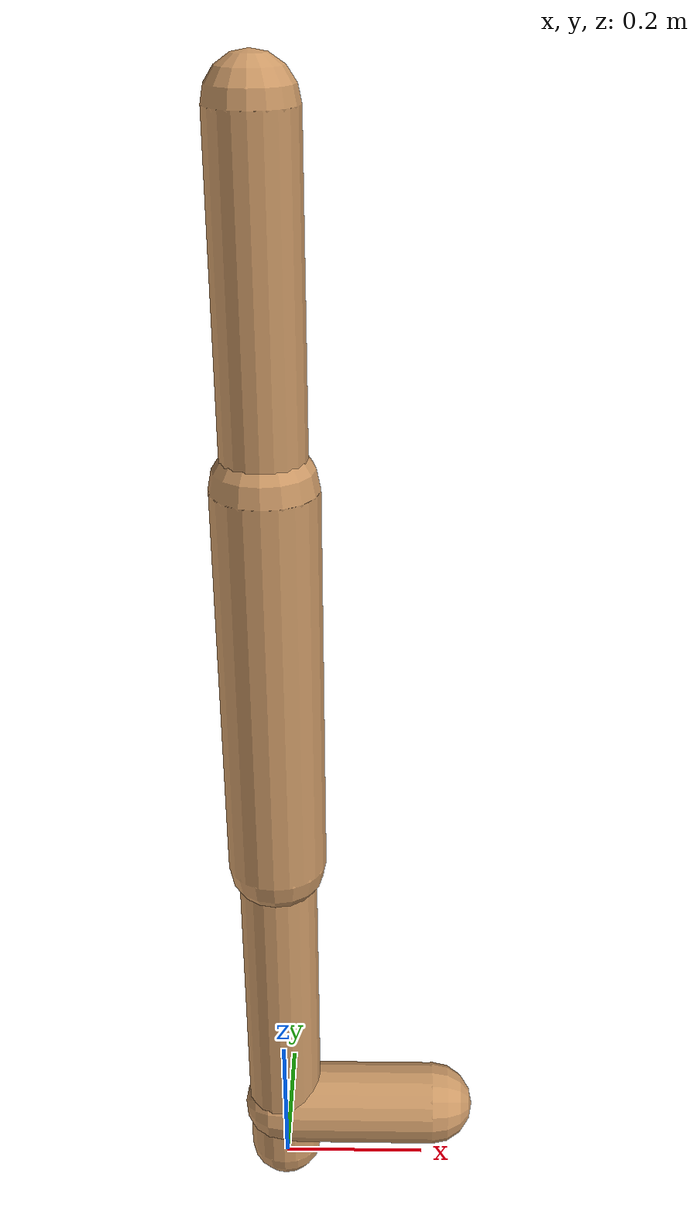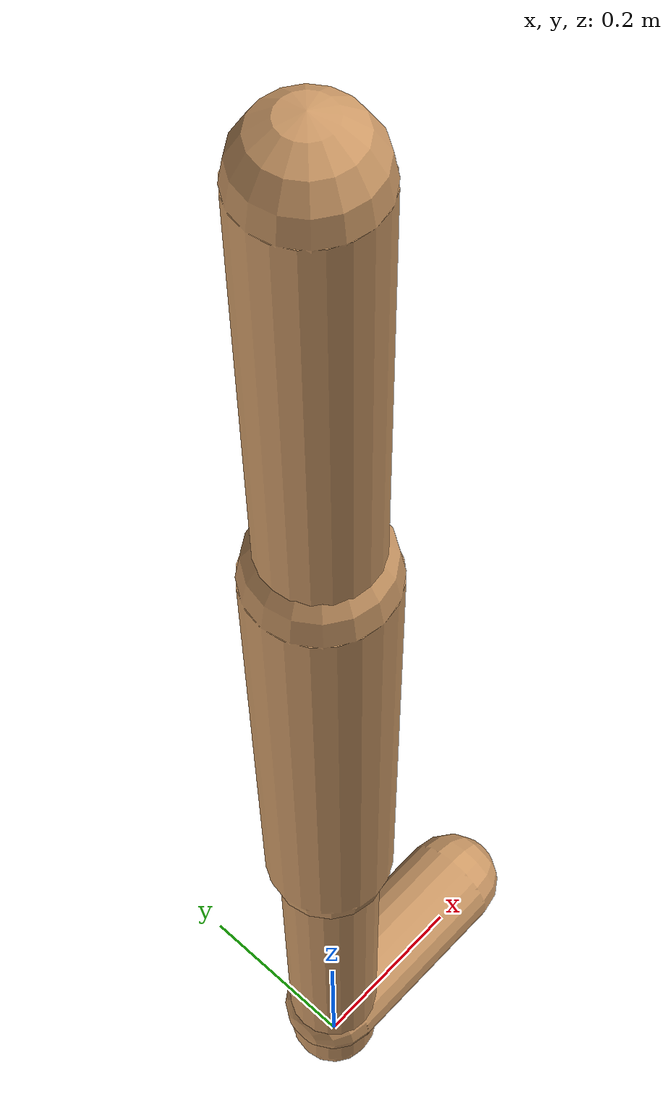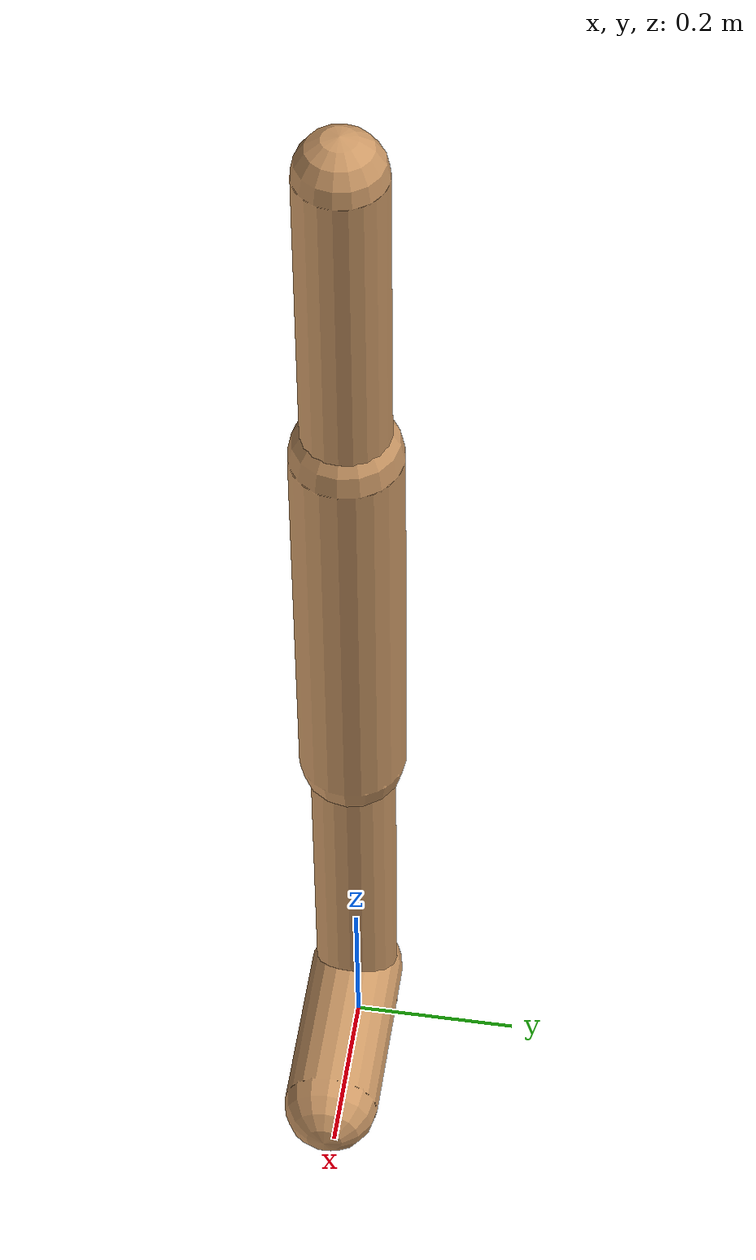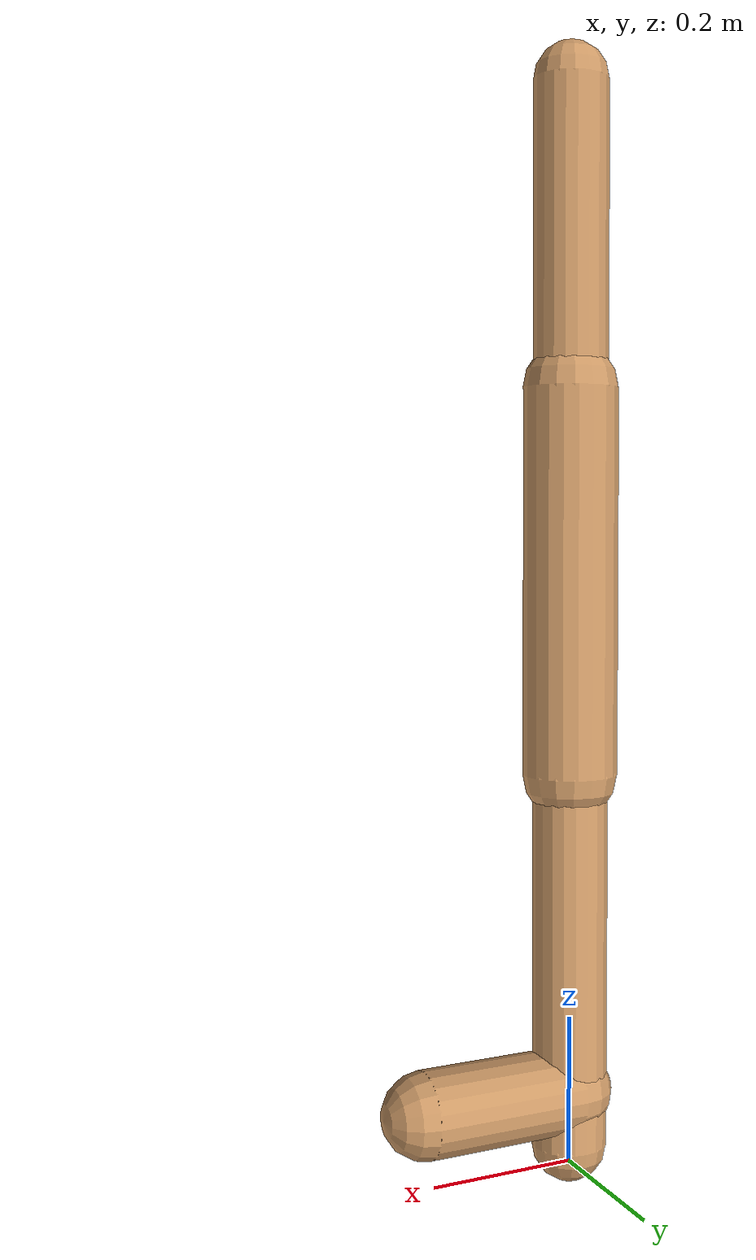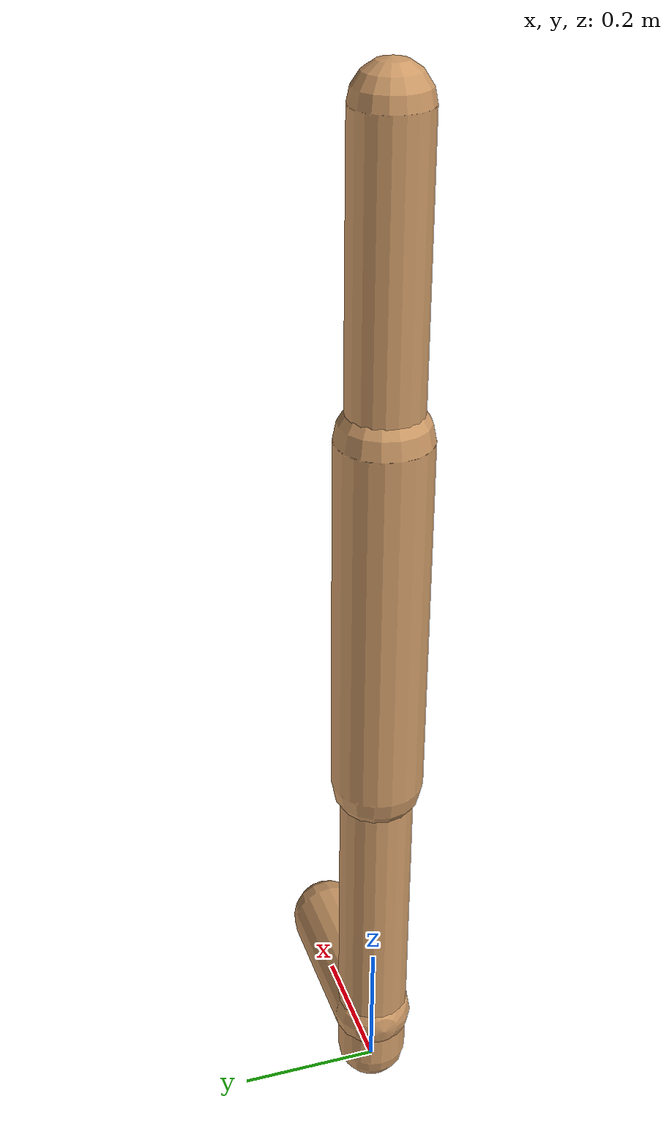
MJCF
<mujoco model="walker2d">
  <compiler angle="degree" coordinate="global" inertiafromgeom="true" />
  <default>
    <joint armature="0.01" damping=".1" limited="true" />
    <geom conaffinity="0" condim="3" contype="1" density="1000" friction="0.8 .1 .1" rgba="0.8 0.6 .4 1" />
  </default>
  <option integrator="RK4" timestep="0.002" />
  <worldbody>

    <body name="torso" pos="0 0 0.13949707192111077">
      <joint armature="0" axis="1 0 0" damping="0" limited="false" name="ignorex" pos="0 0 0" stiffness="0" type="slide" />
      <joint armature="0" axis="0 0 1" damping="0" limited="false" name="ignorez" pos="0 0 0" ref="1.25" stiffness="0" type="slide" />
      <joint armature="0" axis="0 1 0" damping="0" limited="false" name="ignorey" pos="0 0 0" stiffness="0" type="hinge" />
      <geom fromto="0 0 1.45 0 0 1.05" name="torso_geom" size="0.05025187811954454" type="capsule" />
      <body name="thigh">
        <joint axis="0 -1 0" name="thigh_joint" pos="0 0 1.05" range="-150 0" type="hinge" />
        <geom fromto="0.0 0.0 1.05 0.0 0.0 0.5339224396163159" name="thigh_geom" size="0.06374938600650841" type="capsule" />
        <body name="leg" pos="0.0 0.0 -0.06607756038368406">
          <joint axis="0 -1 0" name="leg_joint" pos="0 0 0.6" range="-150 0" type="hinge" />
          <geom fromto="0.0 0.0 0.6 0.0 0.0 0.026580488462573285" name="leg_geom" size="0.050999508805206734" type="capsule" />
          <body name="foot" pos="0.0 0.0 -0.07341951153742672">
            <joint axis="0 -1 0" name="foot_joint" pos="0 0 0.1" range="-45 45" type="hinge" />
            <geom fromto="-0.0 0.0 0.1 0.21318888728207092 0.0 0.1" name="foot_geom" size="0.05775833782731203" type="capsule" />
          </body>
        </body>
      </body>

      <body name="thigh_left">
        <joint axis="0 -1 0" name="thigh_left_joint" pos="0 0 1.05" range="-150 0" type="hinge" />
        <geom fromto="0.0 0.0 1.05 0.0 0.0 0.5339224396163159" name="thigh_left_geom" rgba=".7 .3 .6 1" size="0.06374938600650841" type="capsule" />
        <body name="leg_left" pos="0.0 0.0 -0.06607756038368406">
          <joint axis="0 -1 0" name="leg_left_joint" pos="0 0 0.6" range="-150 0" type="hinge" />
          <geom fromto="0.0 0.0 0.6 0.0 0.0 0.026580488462573285" name="leg_left_geom" rgba=".7 .3 .6 1" size="0.050999508805206734" type="capsule" />
          <body name="foot_left" pos="0.0 0.0 -0.07341951153742672">
            <joint axis="0 -1 0" name="foot_left_joint" pos="0 0 0.1" range="-45 45" type="hinge" />
            <geom fromto="-0.0 0.0 0.1 0.21318888728207092 0.0 0.1" name="foot_left_geom" rgba=".7 .3 .6 1" size="0.05775833782731203" type="capsule" />
          </body>
        </body>
      </body>
    </body>
  </worldbody>
  <actuator>

    <motor ctrllimited="true" ctrlrange="-1.0 1.0" gear="100" joint="thigh_joint" />
    <motor ctrllimited="true" ctrlrange="-1.0 1.0" gear="100" joint="leg_joint" />
    <motor ctrllimited="true" ctrlrange="-1.0 1.0" gear="100" joint="foot_joint" />
    <motor ctrllimited="true" ctrlrange="-1.0 1.0" gear="100" joint="thigh_left_joint" />
    <motor ctrllimited="true" ctrlrange="-1.0 1.0" gear="100" joint="leg_left_joint" />
    <motor ctrllimited="true" ctrlrange="-1.0 1.0" gear="100" joint="foot_left_joint" />

  </actuator>
</mujoco>
